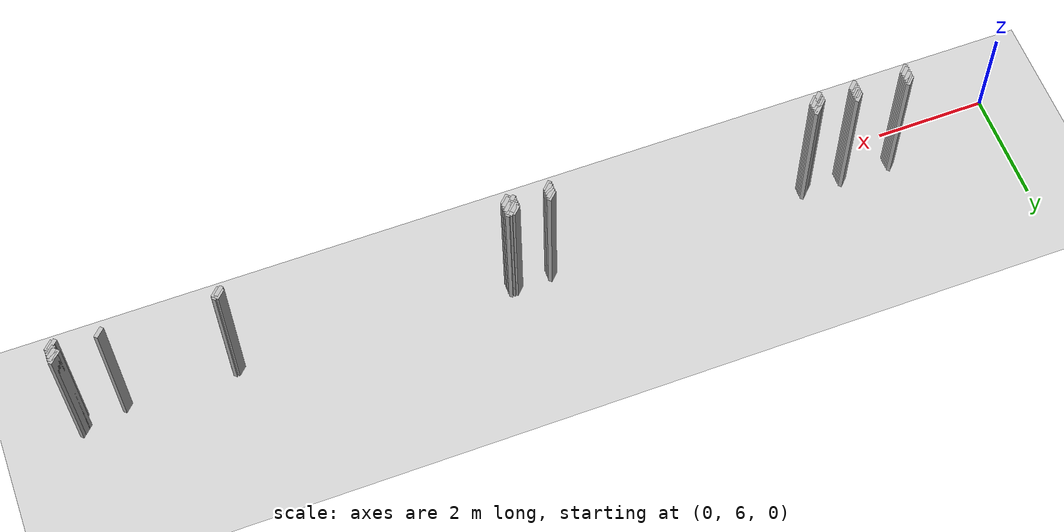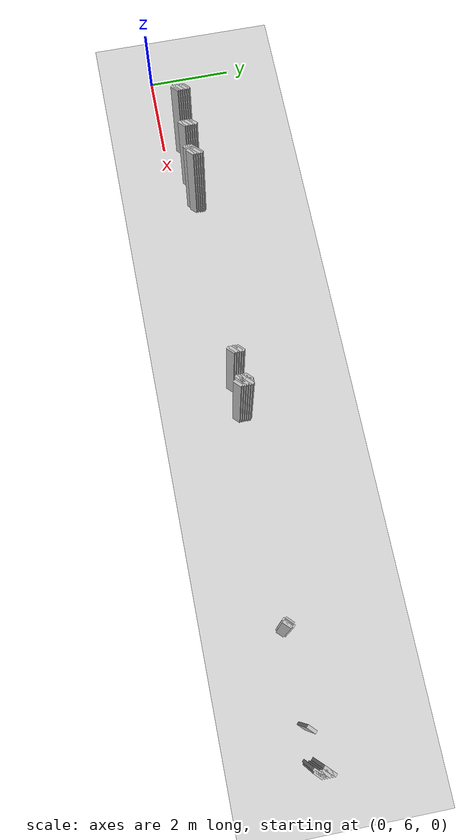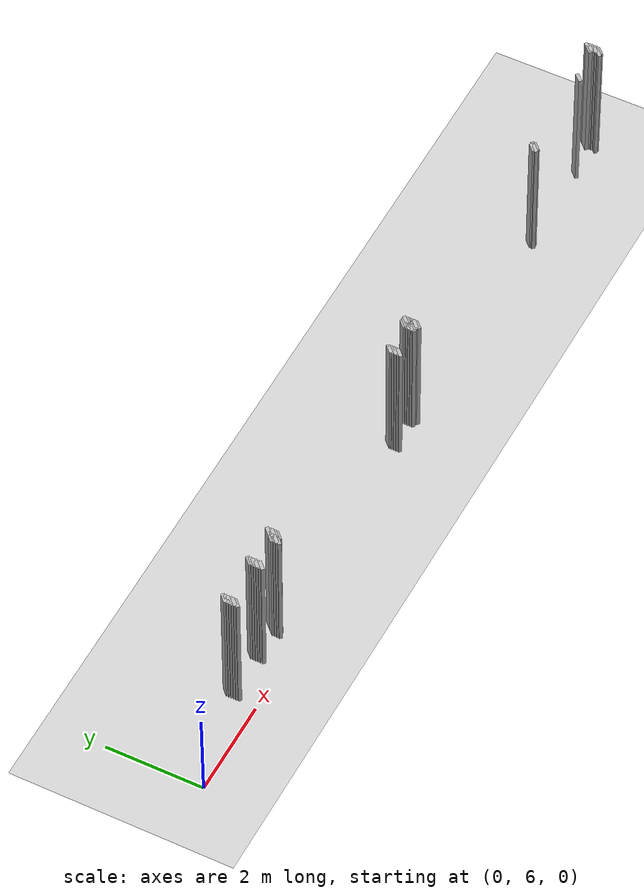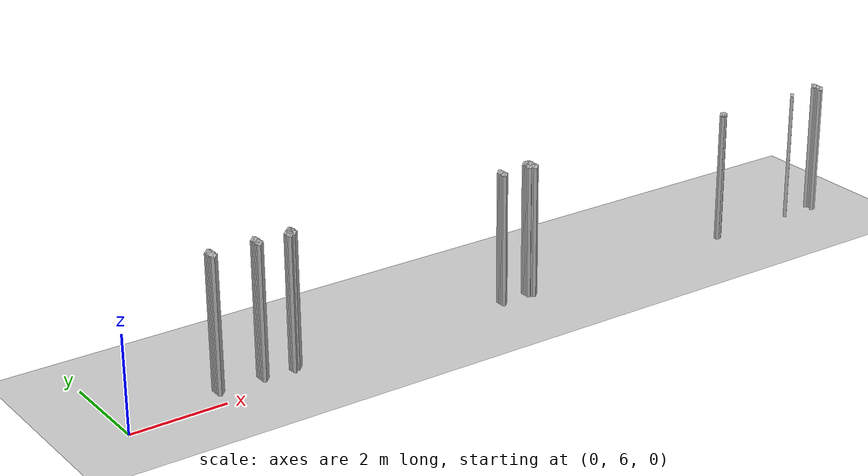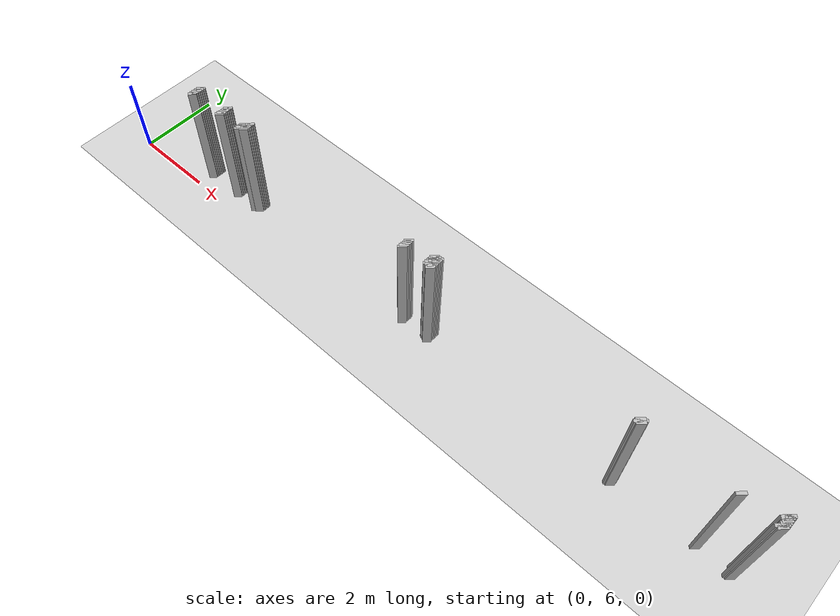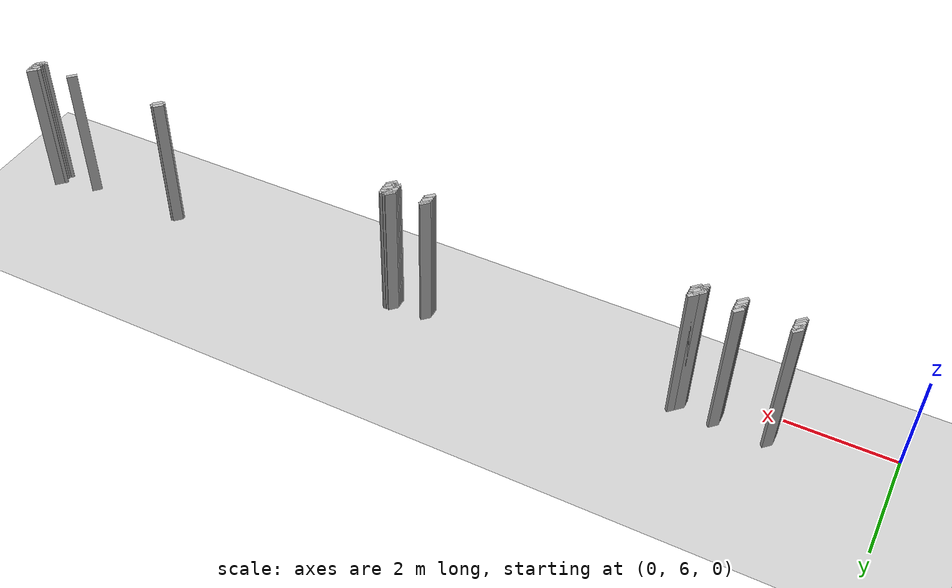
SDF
<sdf version="1.5">
 <world name="default">
  <include><uri>model://ground_plane</uri></include>
  <include><uri>model://sun</uri></include>
  <model name="grey_wall_2438">
   <static>1</static>
   <link name="link">
    <pose>9.25 6.7  1.4 0 0 -0.7853981633974483</pose>
    <collision name="collision">
     <geometry><box><size>0.07071067811865576 .2  2.8</size></box></geometry>
    </collision>
    <visual name="visual">
     <cast_shadows>0</cast_shadows>
     <geometry><box><size>0.07071067811865576 .2  2.8</size></box></geometry>
    </visual>
   </link>
  </model>
  <model name="grey_wall_2439">
   <static>1</static>
   <link name="link">
    <pose>9.3 6.7  1.4 0 0 -0.7853981633974483</pose>
    <collision name="collision">
     <geometry><box><size>0.07071067811865576 .2  2.8</size></box></geometry>
    </collision>
    <visual name="visual">
     <cast_shadows>0</cast_shadows>
     <geometry><box><size>0.07071067811865576 .2  2.8</size></box></geometry>
    </visual>
   </link>
  </model>
  <model name="grey_wall_2440">
   <static>1</static>
   <link name="link">
    <pose>9.35 6.7  1.4 0 0 -0.7853981633974483</pose>
    <collision name="collision">
     <geometry><box><size>0.07071067811865576 .2  2.8</size></box></geometry>
    </collision>
    <visual name="visual">
     <cast_shadows>0</cast_shadows>
     <geometry><box><size>0.07071067811865576 .2  2.8</size></box></geometry>
    </visual>
   </link>
  </model>
  <model name="grey_wall_2441">
   <static>1</static>
   <link name="link">
    <pose>17.05 6.7  1.4 0 0 -0.7853981633974838</pose>
    <collision name="collision">
     <geometry><box><size>0.07071067811865325 .2  2.8</size></box></geometry>
    </collision>
    <visual name="visual">
     <cast_shadows>0</cast_shadows>
     <geometry><box><size>0.07071067811865325 .2  2.8</size></box></geometry>
    </visual>
   </link>
  </model>
  <model name="grey_wall_2442">
   <static>1</static>
   <link name="link">
    <pose>2.1 6.65  1.4 0 0 -0.7853981633974572</pose>
    <collision name="collision">
     <geometry><box><size>0.07071067811865513 .2  2.8</size></box></geometry>
    </collision>
    <visual name="visual">
     <cast_shadows>0</cast_shadows>
     <geometry><box><size>0.07071067811865513 .2  2.8</size></box></geometry>
    </visual>
   </link>
  </model>
  <model name="grey_wall_2443">
   <static>1</static>
   <link name="link">
    <pose>3.0500000000000003 6.65  1.4 0 0 -0.7853981633974572</pose>
    <collision name="collision">
     <geometry><box><size>0.07071067811865513 .2  2.8</size></box></geometry>
    </collision>
    <visual name="visual">
     <cast_shadows>0</cast_shadows>
     <geometry><box><size>0.07071067811865513 .2  2.8</size></box></geometry>
    </visual>
   </link>
  </model>
  <model name="grey_wall_2444">
   <static>1</static>
   <link name="link">
    <pose>3.8000000000000003 6.65  1.4 0 0 -0.7853981633974572</pose>
    <collision name="collision">
     <geometry><box><size>0.07071067811865513 .2  2.8</size></box></geometry>
    </collision>
    <visual name="visual">
     <cast_shadows>0</cast_shadows>
     <geometry><box><size>0.07071067811865513 .2  2.8</size></box></geometry>
    </visual>
   </link>
  </model>
  <model name="grey_wall_2445">
   <static>1</static>
   <link name="link">
    <pose>8.6 6.65  1.4 0 0 -0.7853981633974483</pose>
    <collision name="collision">
     <geometry><box><size>0.07071067811865576 .2  2.8</size></box></geometry>
    </collision>
    <visual name="visual">
     <cast_shadows>0</cast_shadows>
     <geometry><box><size>0.07071067811865576 .2  2.8</size></box></geometry>
    </visual>
   </link>
  </model>
  <model name="grey_wall_2446">
   <static>1</static>
   <link name="link">
    <pose>9.25 6.65  1.4 0 0 -0.7853981633974483</pose>
    <collision name="collision">
     <geometry><box><size>0.07071067811865576 .2  2.8</size></box></geometry>
    </collision>
    <visual name="visual">
     <cast_shadows>0</cast_shadows>
     <geometry><box><size>0.07071067811865576 .2  2.8</size></box></geometry>
    </visual>
   </link>
  </model>
  <model name="grey_wall_2447">
   <static>1</static>
   <link name="link">
    <pose>9.35 6.65  1.4 0 0 -0.7853981633974483</pose>
    <collision name="collision">
     <geometry><box><size>0.07071067811865576 .2  2.8</size></box></geometry>
    </collision>
    <visual name="visual">
     <cast_shadows>0</cast_shadows>
     <geometry><box><size>0.07071067811865576 .2  2.8</size></box></geometry>
    </visual>
   </link>
  </model>
  <model name="grey_wall_2448">
   <static>1</static>
   <link name="link">
    <pose>17.0 6.65  1.4 0 0 -0.7853981633974838</pose>
    <collision name="collision">
     <geometry><box><size>0.07071067811865325 .2  2.8</size></box></geometry>
    </collision>
    <visual name="visual">
     <cast_shadows>0</cast_shadows>
     <geometry><box><size>0.07071067811865325 .2  2.8</size></box></geometry>
    </visual>
   </link>
  </model>
  <model name="grey_wall_2449">
   <static>1</static>
   <link name="link">
    <pose>17.05 6.65  1.4 0 0 -0.7853981633974838</pose>
    <collision name="collision">
     <geometry><box><size>0.07071067811865325 .2  2.8</size></box></geometry>
    </collision>
    <visual name="visual">
     <cast_shadows>0</cast_shadows>
     <geometry><box><size>0.07071067811865325 .2  2.8</size></box></geometry>
    </visual>
   </link>
  </model>
  <model name="grey_wall_2450">
   <static>1</static>
   <link name="link">
    <pose>2.1 6.6000000000000005  1.4 0 0 -0.7853981633974572</pose>
    <collision name="collision">
     <geometry><box><size>0.07071067811865513 .2  2.8</size></box></geometry>
    </collision>
    <visual name="visual">
     <cast_shadows>0</cast_shadows>
     <geometry><box><size>0.07071067811865513 .2  2.8</size></box></geometry>
    </visual>
   </link>
  </model>
  <model name="grey_wall_2451">
   <static>1</static>
   <link name="link">
    <pose>3.0500000000000003 6.6000000000000005  1.4 0 0 -0.7853981633974572</pose>
    <collision name="collision">
     <geometry><box><size>0.07071067811865513 .2  2.8</size></box></geometry>
    </collision>
    <visual name="visual">
     <cast_shadows>0</cast_shadows>
     <geometry><box><size>0.07071067811865513 .2  2.8</size></box></geometry>
    </visual>
   </link>
  </model>
  <model name="grey_wall_2452">
   <static>1</static>
   <link name="link">
    <pose>3.8000000000000003 6.6000000000000005  1.4 0 0 -0.7853981633974572</pose>
    <collision name="collision">
     <geometry><box><size>0.07071067811865513 .2  2.8</size></box></geometry>
    </collision>
    <visual name="visual">
     <cast_shadows>0</cast_shadows>
     <geometry><box><size>0.07071067811865513 .2  2.8</size></box></geometry>
    </visual>
   </link>
  </model>
  <model name="grey_wall_2453">
   <static>1</static>
   <link name="link">
    <pose>8.6 6.6000000000000005  1.4 0 0 -0.7853981633974483</pose>
    <collision name="collision">
     <geometry><box><size>0.07071067811865576 .2  2.8</size></box></geometry>
    </collision>
    <visual name="visual">
     <cast_shadows>0</cast_shadows>
     <geometry><box><size>0.07071067811865576 .2  2.8</size></box></geometry>
    </visual>
   </link>
  </model>
  <model name="grey_wall_2454">
   <static>1</static>
   <link name="link">
    <pose>9.25 6.6000000000000005  1.4 0 0 -0.7853981633974483</pose>
    <collision name="collision">
     <geometry><box><size>0.07071067811865576 .2  2.8</size></box></geometry>
    </collision>
    <visual name="visual">
     <cast_shadows>0</cast_shadows>
     <geometry><box><size>0.07071067811865576 .2  2.8</size></box></geometry>
    </visual>
   </link>
  </model>
  <model name="grey_wall_2455">
   <static>1</static>
   <link name="link">
    <pose>9.3 6.6000000000000005  1.4 0 0 -0.7853981633974483</pose>
    <collision name="collision">
     <geometry><box><size>0.07071067811865576 .2  2.8</size></box></geometry>
    </collision>
    <visual name="visual">
     <cast_shadows>0</cast_shadows>
     <geometry><box><size>0.07071067811865576 .2  2.8</size></box></geometry>
    </visual>
   </link>
  </model>
  <model name="grey_wall_2456">
   <static>1</static>
   <link name="link">
    <pose>9.35 6.6000000000000005  1.4 0 0 -0.7853981633974483</pose>
    <collision name="collision">
     <geometry><box><size>0.07071067811865576 .2  2.8</size></box></geometry>
    </collision>
    <visual name="visual">
     <cast_shadows>0</cast_shadows>
     <geometry><box><size>0.07071067811865576 .2  2.8</size></box></geometry>
    </visual>
   </link>
  </model>
  <model name="grey_wall_2457">
   <static>1</static>
   <link name="link">
    <pose>17.05 6.6000000000000005  1.4 0 0 -0.7853981633974838</pose>
    <collision name="collision">
     <geometry><box><size>0.07071067811865325 .2  2.8</size></box></geometry>
    </collision>
    <visual name="visual">
     <cast_shadows>0</cast_shadows>
     <geometry><box><size>0.07071067811865325 .2  2.8</size></box></geometry>
    </visual>
   </link>
  </model>
  <model name="grey_wall_2458">
   <static>1</static>
   <link name="link">
    <pose>2.1 6.550000000000001  1.4 0 0 -0.7853981633974572</pose>
    <collision name="collision">
     <geometry><box><size>0.07071067811865513 .2  2.8</size></box></geometry>
    </collision>
    <visual name="visual">
     <cast_shadows>0</cast_shadows>
     <geometry><box><size>0.07071067811865513 .2  2.8</size></box></geometry>
    </visual>
   </link>
  </model>
  <model name="grey_wall_2459">
   <static>1</static>
   <link name="link">
    <pose>3.0500000000000003 6.550000000000001  1.4 0 0 -0.7853981633974572</pose>
    <collision name="collision">
     <geometry><box><size>0.07071067811865513 .2  2.8</size></box></geometry>
    </collision>
    <visual name="visual">
     <cast_shadows>0</cast_shadows>
     <geometry><box><size>0.07071067811865513 .2  2.8</size></box></geometry>
    </visual>
   </link>
  </model>
  <model name="grey_wall_2460">
   <static>1</static>
   <link name="link">
    <pose>3.7 6.550000000000001  1.4 0 0 -0.7853981633974572</pose>
    <collision name="collision">
     <geometry><box><size>0.07071067811865513 .2  2.8</size></box></geometry>
    </collision>
    <visual name="visual">
     <cast_shadows>0</cast_shadows>
     <geometry><box><size>0.07071067811865513 .2  2.8</size></box></geometry>
    </visual>
   </link>
  </model>
  <model name="grey_wall_2461">
   <static>1</static>
   <link name="link">
    <pose>3.75 6.550000000000001  1.4 0 0 -0.7853981633974572</pose>
    <collision name="collision">
     <geometry><box><size>0.07071067811865513 .2  2.8</size></box></geometry>
    </collision>
    <visual name="visual">
     <cast_shadows>0</cast_shadows>
     <geometry><box><size>0.07071067811865513 .2  2.8</size></box></geometry>
    </visual>
   </link>
  </model>
  <model name="grey_wall_2462">
   <static>1</static>
   <link name="link">
    <pose>3.8000000000000003 6.550000000000001  1.4 0 0 -0.7853981633974572</pose>
    <collision name="collision">
     <geometry><box><size>0.07071067811865513 .2  2.8</size></box></geometry>
    </collision>
    <visual name="visual">
     <cast_shadows>0</cast_shadows>
     <geometry><box><size>0.07071067811865513 .2  2.8</size></box></geometry>
    </visual>
   </link>
  </model>
  <model name="grey_wall_2463">
   <static>1</static>
   <link name="link">
    <pose>8.6 6.550000000000001  1.4 0 0 -0.7853981633974483</pose>
    <collision name="collision">
     <geometry><box><size>0.07071067811865576 .2  2.8</size></box></geometry>
    </collision>
    <visual name="visual">
     <cast_shadows>0</cast_shadows>
     <geometry><box><size>0.07071067811865576 .2  2.8</size></box></geometry>
    </visual>
   </link>
  </model>
  <model name="grey_wall_2464">
   <static>1</static>
   <link name="link">
    <pose>9.25 6.550000000000001  1.4 0 0 -0.7853981633974483</pose>
    <collision name="collision">
     <geometry><box><size>0.07071067811865576 .2  2.8</size></box></geometry>
    </collision>
    <visual name="visual">
     <cast_shadows>0</cast_shadows>
     <geometry><box><size>0.07071067811865576 .2  2.8</size></box></geometry>
    </visual>
   </link>
  </model>
  <model name="grey_wall_2465">
   <static>1</static>
   <link name="link">
    <pose>9.35 6.550000000000001  1.4 0 0 -0.7853981633974483</pose>
    <collision name="collision">
     <geometry><box><size>0.07071067811865576 .2  2.8</size></box></geometry>
    </collision>
    <visual name="visual">
     <cast_shadows>0</cast_shadows>
     <geometry><box><size>0.07071067811865576 .2  2.8</size></box></geometry>
    </visual>
   </link>
  </model>
  <model name="grey_wall_2466">
   <static>1</static>
   <link name="link">
    <pose>17.05 6.550000000000001  1.4 0 0 -0.7853981633974838</pose>
    <collision name="collision">
     <geometry><box><size>0.07071067811865325 .2  2.8</size></box></geometry>
    </collision>
    <visual name="visual">
     <cast_shadows>0</cast_shadows>
     <geometry><box><size>0.07071067811865325 .2  2.8</size></box></geometry>
    </visual>
   </link>
  </model>
  <model name="grey_wall_2467">
   <static>1</static>
   <link name="link">
    <pose>2.1 6.5  1.4 0 0 -0.7853981633974572</pose>
    <collision name="collision">
     <geometry><box><size>0.07071067811865513 .2  2.8</size></box></geometry>
    </collision>
    <visual name="visual">
     <cast_shadows>0</cast_shadows>
     <geometry><box><size>0.07071067811865513 .2  2.8</size></box></geometry>
    </visual>
   </link>
  </model>
  <model name="grey_wall_2468">
   <static>1</static>
   <link name="link">
    <pose>3.0500000000000003 6.5  1.4 0 0 -0.7853981633974572</pose>
    <collision name="collision">
     <geometry><box><size>0.07071067811865513 .2  2.8</size></box></geometry>
    </collision>
    <visual name="visual">
     <cast_shadows>0</cast_shadows>
     <geometry><box><size>0.07071067811865513 .2  2.8</size></box></geometry>
    </visual>
   </link>
  </model>
  <model name="grey_wall_2469">
   <static>1</static>
   <link name="link">
    <pose>3.7 6.5  1.4 0 0 -0.7853981633974572</pose>
    <collision name="collision">
     <geometry><box><size>0.07071067811865513 .2  2.8</size></box></geometry>
    </collision>
    <visual name="visual">
     <cast_shadows>0</cast_shadows>
     <geometry><box><size>0.07071067811865513 .2  2.8</size></box></geometry>
    </visual>
   </link>
  </model>
  <model name="grey_wall_2470">
   <static>1</static>
   <link name="link">
    <pose>3.8000000000000003 6.5  1.4 0 0 -0.7853981633974572</pose>
    <collision name="collision">
     <geometry><box><size>0.07071067811865513 .2  2.8</size></box></geometry>
    </collision>
    <visual name="visual">
     <cast_shadows>0</cast_shadows>
     <geometry><box><size>0.07071067811865513 .2  2.8</size></box></geometry>
    </visual>
   </link>
  </model>
  <model name="grey_wall_2471">
   <static>1</static>
   <link name="link">
    <pose>8.6 6.5  1.4 0 0 -0.7853981633974483</pose>
    <collision name="collision">
     <geometry><box><size>0.07071067811865576 .2  2.8</size></box></geometry>
    </collision>
    <visual name="visual">
     <cast_shadows>0</cast_shadows>
     <geometry><box><size>0.07071067811865576 .2  2.8</size></box></geometry>
    </visual>
   </link>
  </model>
  <model name="grey_wall_2472">
   <static>1</static>
   <link name="link">
    <pose>9.25 6.5  1.4 0 0 -0.7853981633974483</pose>
    <collision name="collision">
     <geometry><box><size>0.07071067811865576 .2  2.8</size></box></geometry>
    </collision>
    <visual name="visual">
     <cast_shadows>0</cast_shadows>
     <geometry><box><size>0.07071067811865576 .2  2.8</size></box></geometry>
    </visual>
   </link>
  </model>
  <model name="grey_wall_2473">
   <static>1</static>
   <link name="link">
    <pose>9.3 6.5  1.4 0 0 -0.7853981633974483</pose>
    <collision name="collision">
     <geometry><box><size>0.07071067811865576 .2  2.8</size></box></geometry>
    </collision>
    <visual name="visual">
     <cast_shadows>0</cast_shadows>
     <geometry><box><size>0.07071067811865576 .2  2.8</size></box></geometry>
    </visual>
   </link>
  </model>
  <model name="grey_wall_2474">
   <static>1</static>
   <link name="link">
    <pose>9.35 6.5  1.4 0 0 -0.7853981633974483</pose>
    <collision name="collision">
     <geometry><box><size>0.07071067811865576 .2  2.8</size></box></geometry>
    </collision>
    <visual name="visual">
     <cast_shadows>0</cast_shadows>
     <geometry><box><size>0.07071067811865576 .2  2.8</size></box></geometry>
    </visual>
   </link>
  </model>
  <model name="grey_wall_2475">
   <static>1</static>
   <link name="link">
    <pose>14.25 6.5  1.4 0 0 -0.7853981633974483</pose>
    <collision name="collision">
     <geometry><box><size>0.07071067811865576 .2  2.8</size></box></geometry>
    </collision>
    <visual name="visual">
     <cast_shadows>0</cast_shadows>
     <geometry><box><size>0.07071067811865576 .2  2.8</size></box></geometry>
    </visual>
   </link>
  </model>
  <model name="grey_wall_2476">
   <static>1</static>
   <link name="link">
    <pose>14.3 6.5  1.4 0 0 -0.7853981633974483</pose>
    <collision name="collision">
     <geometry><box><size>0.07071067811865576 .2  2.8</size></box></geometry>
    </collision>
    <visual name="visual">
     <cast_shadows>0</cast_shadows>
     <geometry><box><size>0.07071067811865576 .2  2.8</size></box></geometry>
    </visual>
   </link>
  </model>
  <model name="grey_wall_2477">
   <static>1</static>
   <link name="link">
    <pose>16.25 6.5  1.4 0 0 -0.7853981633974838</pose>
    <collision name="collision">
     <geometry><box><size>0.07071067811865325 .2  2.8</size></box></geometry>
    </collision>
    <visual name="visual">
     <cast_shadows>0</cast_shadows>
     <geometry><box><size>0.07071067811865325 .2  2.8</size></box></geometry>
    </visual>
   </link>
  </model>
  <model name="grey_wall_2478">
   <static>1</static>
   <link name="link">
    <pose>17.05 6.5  1.4 0 0 -0.7853981633974838</pose>
    <collision name="collision">
     <geometry><box><size>0.07071067811865325 .2  2.8</size></box></geometry>
    </collision>
    <visual name="visual">
     <cast_shadows>0</cast_shadows>
     <geometry><box><size>0.07071067811865325 .2  2.8</size></box></geometry>
    </visual>
   </link>
  </model>
  <model name="grey_wall_2479">
   <static>1</static>
   <link name="link">
    <pose>2.1 6.45  1.4 0 0 -0.7853981633974572</pose>
    <collision name="collision">
     <geometry><box><size>0.07071067811865513 .2  2.8</size></box></geometry>
    </collision>
    <visual name="visual">
     <cast_shadows>0</cast_shadows>
     <geometry><box><size>0.07071067811865513 .2  2.8</size></box></geometry>
    </visual>
   </link>
  </model>
  <model name="grey_wall_2480">
   <static>1</static>
   <link name="link">
    <pose>3.0500000000000003 6.45  1.4 0 0 -0.7853981633974572</pose>
    <collision name="collision">
     <geometry><box><size>0.07071067811865513 .2  2.8</size></box></geometry>
    </collision>
    <visual name="visual">
     <cast_shadows>0</cast_shadows>
     <geometry><box><size>0.07071067811865513 .2  2.8</size></box></geometry>
    </visual>
   </link>
  </model>
  <model name="grey_wall_2481">
   <static>1</static>
   <link name="link">
    <pose>3.7 6.45  1.4 0 0 -0.7853981633974572</pose>
    <collision name="collision">
     <geometry><box><size>0.07071067811865513 .2  2.8</size></box></geometry>
    </collision>
    <visual name="visual">
     <cast_shadows>0</cast_shadows>
     <geometry><box><size>0.07071067811865513 .2  2.8</size></box></geometry>
    </visual>
   </link>
  </model>
  <model name="grey_wall_2482">
   <static>1</static>
   <link name="link">
    <pose>3.8000000000000003 6.45  1.4 0 0 -0.7853981633974572</pose>
    <collision name="collision">
     <geometry><box><size>0.07071067811865513 .2  2.8</size></box></geometry>
    </collision>
    <visual name="visual">
     <cast_shadows>0</cast_shadows>
     <geometry><box><size>0.07071067811865513 .2  2.8</size></box></geometry>
    </visual>
   </link>
  </model>
  <model name="grey_wall_2483">
   <static>1</static>
   <link name="link">
    <pose>8.6 6.45  1.4 0 0 -0.7853981633974483</pose>
    <collision name="collision">
     <geometry><box><size>0.07071067811865576 .2  2.8</size></box></geometry>
    </collision>
    <visual name="visual">
     <cast_shadows>0</cast_shadows>
     <geometry><box><size>0.07071067811865576 .2  2.8</size></box></geometry>
    </visual>
   </link>
  </model>
  <model name="grey_wall_2484">
   <static>1</static>
   <link name="link">
    <pose>9.35 6.45  1.4 0 0 -0.7853981633974483</pose>
    <collision name="collision">
     <geometry><box><size>0.07071067811865576 .2  2.8</size></box></geometry>
    </collision>
    <visual name="visual">
     <cast_shadows>0</cast_shadows>
     <geometry><box><size>0.07071067811865576 .2  2.8</size></box></geometry>
    </visual>
   </link>
  </model>
  <model name="grey_wall_2485">
   <static>1</static>
   <link name="link">
    <pose>14.25 6.45  1.4 0 0 -0.7853981633974483</pose>
    <collision name="collision">
     <geometry><box><size>0.07071067811865576 .2  2.8</size></box></geometry>
    </collision>
    <visual name="visual">
     <cast_shadows>0</cast_shadows>
     <geometry><box><size>0.07071067811865576 .2  2.8</size></box></geometry>
    </visual>
   </link>
  </model>
  <model name="grey_wall_2486">
   <static>1</static>
   <link name="link">
    <pose>14.3 6.45  1.4 0 0 -0.7853981633974483</pose>
    <collision name="collision">
     <geometry><box><size>0.07071067811865576 .2  2.8</size></box></geometry>
    </collision>
    <visual name="visual">
     <cast_shadows>0</cast_shadows>
     <geometry><box><size>0.07071067811865576 .2  2.8</size></box></geometry>
    </visual>
   </link>
  </model>
  <model name="grey_wall_2487">
   <static>1</static>
   <link name="link">
    <pose>17.0 6.45  1.4 0 0 -0.7853981633974838</pose>
    <collision name="collision">
     <geometry><box><size>0.07071067811865325 .2  2.8</size></box></geometry>
    </collision>
    <visual name="visual">
     <cast_shadows>0</cast_shadows>
     <geometry><box><size>0.07071067811865325 .2  2.8</size></box></geometry>
    </visual>
   </link>
  </model>
  <model name="grey_wall_2488">
   <static>1</static>
   <link name="link">
    <pose>17.05 6.45  1.4 0 0 -0.7853981633974838</pose>
    <collision name="collision">
     <geometry><box><size>0.07071067811865325 .2  2.8</size></box></geometry>
    </collision>
    <visual name="visual">
     <cast_shadows>0</cast_shadows>
     <geometry><box><size>0.07071067811865325 .2  2.8</size></box></geometry>
    </visual>
   </link>
  </model>
  <model name="grey_wall_2489">
   <static>1</static>
   <link name="link">
    <pose>2.1 6.4  1.4 0 0 -0.7853981633974572</pose>
    <collision name="collision">
     <geometry><box><size>0.07071067811865513 .2  2.8</size></box></geometry>
    </collision>
    <visual name="visual">
     <cast_shadows>0</cast_shadows>
     <geometry><box><size>0.07071067811865513 .2  2.8</size></box></geometry>
    </visual>
   </link>
  </model>
  <model name="grey_wall_2490">
   <static>1</static>
   <link name="link">
    <pose>3.0500000000000003 6.4  1.4 0 0 -0.7853981633974572</pose>
    <collision name="collision">
     <geometry><box><size>0.07071067811865513 .2  2.8</size></box></geometry>
    </collision>
    <visual name="visual">
     <cast_shadows>0</cast_shadows>
     <geometry><box><size>0.07071067811865513 .2  2.8</size></box></geometry>
    </visual>
   </link>
  </model>
  <model name="grey_wall_2491">
   <static>1</static>
   <link name="link">
    <pose>3.7 6.4  1.4 0 0 -0.7853981633974572</pose>
    <collision name="collision">
     <geometry><box><size>0.07071067811865513 .2  2.8</size></box></geometry>
    </collision>
    <visual name="visual">
     <cast_shadows>0</cast_shadows>
     <geometry><box><size>0.07071067811865513 .2  2.8</size></box></geometry>
    </visual>
   </link>
  </model>
 </world>
</sdf>
